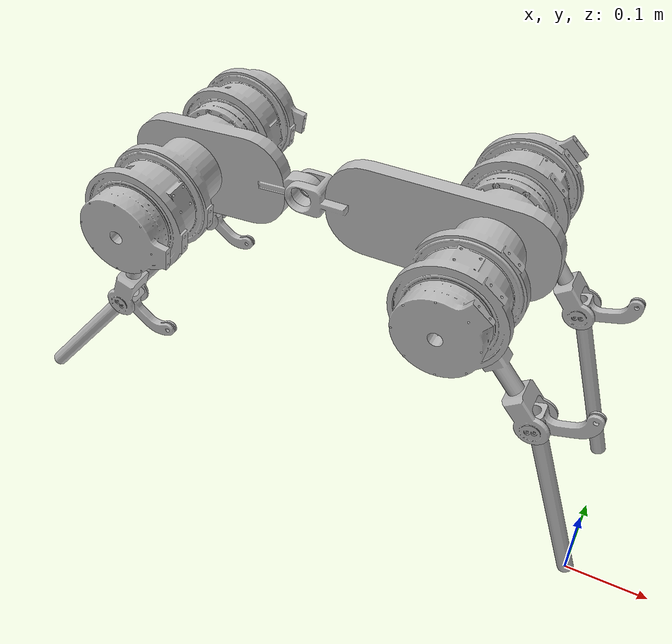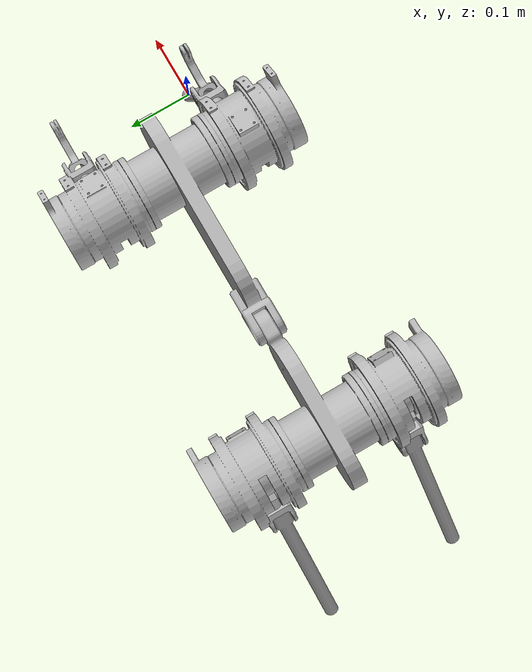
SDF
<?xml version="1.0" ?>
<sdf version='1.6'>
  <model name='FlexRobot_v1'>
    <link name='FrontBody'>
      <pose frame=''>0 0 0 0 -0 0</pose>
      <inertial>
        <pose frame=''>-0.55658 0.10246 0.35766 0 -0 0</pose>
        <mass>4.5059</mass>
        <inertia>
          <ixx>0.051537</ixx>
          <ixy>1.0077e-05</ixy>
          <ixz>0.00011737</ixz>
          <iyy>0.013909</iyy>
          <iyz>-4.4566e-05</iyz>
          <izz>0.054057</izz>
        </inertia>
      </inertial>
      <collision name='FrontBody_collision'>
        <pose frame=''>0 0 0 0 -0 0</pose>
        <geometry>
          <mesh>
            <scale>1 1 1</scale>
            <uri>model://FlexRobot_v1/meshes/FrontBody.STL</uri>
          </mesh>
        </geometry>
      </collision>
      <visual name='FrontBody_visual'>
        <pose frame=''>0 0 0 0 -0 0</pose>
        <geometry>
          <mesh>
            <scale>1 1 1</scale>
            <uri>model://FlexRobot_v1/meshes/FrontBody.STL</uri>
          </mesh>
        </geometry>
      </visual>
    </link>
    <link name='BackBody'>
      <pose frame=''>-0.40775 0.083439 0.36531 0 0 0</pose>
      <inertial>
        <pose frame=''>0.215 0.019021 0.0008 0 -0 0</pose>
        <mass>4.8301</mass>
        <inertia>
          <ixx>0.052001</ixx>
          <ixy>4.9713e-05</ixy>
          <ixz>0.00011769</ixz>
          <iyy>0.021949</iyy>
          <iyz>-1.9983e-05</iyz>
          <izz>0.061678</izz>
        </inertia>
      </inertial>
      <collision name='BackBody_collision'>
        <pose frame=''>0 0 0 0 -0 0</pose>
        <geometry>
          <mesh>
            <scale>1 1 1</scale>
            <uri>model://FlexRobot_v1/meshes/BackBody.STL</uri>
          </mesh>
        </geometry>
      </collision>
      <visual name='BackBody_visual'>
        <pose frame=''>0 0 0 0 -0 0</pose>
        <geometry>
          <mesh>
            <scale>1 1 1</scale>
            <uri>model://FlexRobot_v1/meshes/BackBody.STL</uri>
          </mesh>
        </geometry>
      </visual>
    </link>
    <joint name='BodyJoint' type='revolute'>
      <child>BackBody</child>
      <parent>FrontBody</parent>
      <axis>
        <xyz>0 -1 -0</xyz>
        <limit>
          <lower>-1e+16</lower>
          <upper>1e+16</upper>
        </limit>
        <dynamics>
          <spring_reference>0</spring_reference>
          <spring_stiffness>0</spring_stiffness>
        </dynamics>
        <use_parent_model_frame>1</use_parent_model_frame>
      </axis>
    </joint>
    <link name='RearBodyLeftLeg_Hip'>
      <pose frame=''>-0.17775 0.07246 0.36531 0 0 0</pose>
      <inertial>
        <pose frame=''>0.04503 -0.071534 -0.058122 0 -0 0</pose>
        <mass>0.23878</mass>
        <inertia>
          <ixx>0.00071753</ixx>
          <ixy>-9.7867e-06</ixy>
          <ixz>-0.00048927</ixz>
          <iyy>0.0011216</iyy>
          <iyz>1.2632e-05</iyz>
          <izz>0.00046505</izz>
        </inertia>
      </inertial>
      <collision name='RearBodyLeftLeg_Hip_collision'>
        <pose frame=''>0 0 0 0 -0 0</pose>
        <geometry>
          <mesh>
            <scale>1 1 1</scale>
            <uri>model://FlexRobot_v1/meshes/RearBodyLeftLeg_Hip.STL</uri>
          </mesh>
        </geometry>
      </collision>
      <visual name='RearBodyLeftLeg_Hip_visual'>
        <pose frame=''>0 0 0 0 -0 0</pose>
        <geometry>
          <mesh>
            <scale>1 1 1</scale>
            <uri>model://FlexRobot_v1/meshes/RearBodyLeftLeg_Hip.STL</uri>
          </mesh>
        </geometry>
      </visual>
    </link>
    <joint name='RearBodyLeftLeg_Hip_Joint' type='revolute'>
      <child>RearBodyLeftLeg_Hip</child>
      <parent>BackBody</parent>
      <axis>
        <xyz>0 -1 -0</xyz>
        <limit>
          <lower>-1e+16</lower>
          <upper>1e+16</upper>
        </limit>
        <dynamics>
          <spring_reference>0</spring_reference>
          <spring_stiffness>0</spring_stiffness>
        </dynamics>
        <use_parent_model_frame>1</use_parent_model_frame>
      </axis>
    </joint>
    <link name='RearBodyLeftLeg_Knee'>
      <pose frame=''>-0.07425 -0.0195 0.23171 0 0 0</pose>
      <inertial>
        <pose frame=''>0.025803 0.0195 -0.032369 0 -0 0</pose>
        <mass>0.092493</mass>
        <inertia>
          <ixx>0.00043795</ixx>
          <ixy>1.0876e-12</ixy>
          <ixz>-6.9646e-05</ixz>
          <iyy>0.00049392</iyy>
          <iyz>-1.9594e-12</iyz>
          <izz>6.4686e-05</izz>
        </inertia>
      </inertial>
      <collision name='RearBodyLeftLeg_Knee_collision'>
        <pose frame=''>0 0 0 0 -0 0</pose>
        <geometry>
          <mesh>
            <scale>1 1 1</scale>
            <uri>model://FlexRobot_v1/meshes/RearBodyLeftLeg_Knee.STL</uri>
          </mesh>
        </geometry>
      </collision>
      <visual name='RearBodyLeftLeg_Knee_visual'>
        <pose frame=''>0 0 0 0 -0 0</pose>
        <geometry>
          <mesh>
            <scale>1 1 1</scale>
            <uri>model://FlexRobot_v1/meshes/RearBodyLeftLeg_Knee.STL</uri>
          </mesh>
        </geometry>
      </visual>
    </link>
    <joint name='RearBodyLeftLeg_Knee' type='revolute'>
      <child>RearBodyLeftLeg_Knee</child>
      <parent>RearBodyLeftLeg_Hip</parent>
      <axis>
        <xyz>0 -1 -0</xyz>
        <limit>
          <lower>-1e+16</lower>
          <upper>1e+16</upper>
        </limit>
        <dynamics>
          <spring_reference>0</spring_reference>
          <spring_stiffness>0</spring_stiffness>
        </dynamics>
        <use_parent_model_frame>1</use_parent_model_frame>
      </axis>
    </joint>
    <link name='RearBodyRightLeg_Hip'>
      <pose frame=''>-0.17775 0.07246 0.36531 0 0 0</pose>
      <inertial>
        <pose frame=''>0.043413 0.13153 -0.059402 0 -0 0</pose>
        <mass>0.23878</mass>
        <inertia>
          <ixx>0.00074488</ixx>
          <ixy>9.558e-06</ixy>
          <ixz>-0.00048056</ixz>
          <iyy>0.0011198</iyy>
          <iyz>-1.2953e-05</iyz>
          <izz>0.00043593</izz>
        </inertia>
      </inertial>
      <collision name='RearBodyRightLeg_Hip_collision'>
        <pose frame=''>0 0 0 0 -0 0</pose>
        <geometry>
          <mesh>
            <scale>1 1 1</scale>
            <uri>model://FlexRobot_v1/meshes/RearBodyRightLeg_Hip.STL</uri>
          </mesh>
        </geometry>
      </collision>
      <visual name='RearBodyRightLeg_Hip_visual'>
        <pose frame=''>0 0 0 0 -0 0</pose>
        <geometry>
          <mesh>
            <scale>1 1 1</scale>
            <uri>model://FlexRobot_v1/meshes/RearBodyRightLeg_Hip.STL</uri>
          </mesh>
        </geometry>
      </visual>
    </link>
    <joint name='RearBodyRightLeg_Hip' type='revolute'>
      <child>RearBodyRightLeg_Hip</child>
      <parent>BackBody</parent>
      <axis>
        <xyz>0 -1 -0</xyz>
        <limit>
          <lower>-1e+16</lower>
          <upper>1e+16</upper>
        </limit>
        <dynamics>
          <spring_reference>0</spring_reference>
          <spring_stiffness>0</spring_stiffness>
        </dynamics>
        <use_parent_model_frame>1</use_parent_model_frame>
      </axis>
    </joint>
    <link name='RearBodyRightLeg_Knee'>
      <pose frame=''>-0.078096 0.18542 0.22882 0 0 0</pose>
      <inertial>
        <pose frame=''>0.02487 0.0195 -0.033091 0 -0 0</pose>
        <mass>0.092493</mass>
        <inertia>
          <ixx>0.00044162</ixx>
          <ixy>1.0346e-12</ixy>
          <ixz>-5.8899e-05</ixz>
          <iyy>0.00049392</iyy>
          <iyz>-2.005e-12</iyz>
          <izz>6.1022e-05</izz>
        </inertia>
      </inertial>
      <collision name='RearBodyRightLeg_Knee_collision'>
        <pose frame=''>0 0 0 0 -0 0</pose>
        <geometry>
          <mesh>
            <scale>1 1 1</scale>
            <uri>model://FlexRobot_v1/meshes/RearBodyRightLeg_Knee.STL</uri>
          </mesh>
        </geometry>
      </collision>
      <visual name='RearBodyRightLeg_Knee_visual'>
        <pose frame=''>0 0 0 0 -0 0</pose>
        <geometry>
          <mesh>
            <scale>1 1 1</scale>
            <uri>model://FlexRobot_v1/meshes/RearBodyRightLeg_Knee.STL</uri>
          </mesh>
        </geometry>
      </visual>
    </link>
    <joint name='RearBodyRightLeg_Knee' type='revolute'>
      <child>RearBodyRightLeg_Knee</child>
      <parent>RearBodyRightLeg_Hip</parent>
      <axis>
        <xyz>0 -1 -0</xyz>
        <limit>
          <lower>-1e+16</lower>
          <upper>1e+16</upper>
        </limit>
        <dynamics>
          <spring_reference>0</spring_reference>
          <spring_stiffness>0</spring_stiffness>
        </dynamics>
        <use_parent_model_frame>1</use_parent_model_frame>
      </axis>
    </joint>
    <link name='FrontLeftLeg_Hip'>
      <pose frame=''>-0.56254 0.07246 0.35731 0 0 0</pose>
      <inertial>
        <pose frame=''>-0.024699 -0.071534 -0.069252 0 -0 0</pose>
        <mass>0.23878</mass>
        <inertia>
          <ixx>0.00098254</ixx>
          <ixy>5.3675e-06</ixy>
          <ixz>0.00031976</ixz>
          <iyy>0.0011216</iyy>
          <iyz>1.5051e-05</iyz>
          <izz>0.00020005</izz>
        </inertia>
      </inertial>
      <collision name='FrontLeftLeg_Hip_collision'>
        <pose frame=''>0 0 0 0 -0 0</pose>
        <geometry>
          <mesh>
            <scale>1 1 1</scale>
            <uri>model://FlexRobot_v1/meshes/FrontLeftLeg_Hip.STL</uri>
          </mesh>
        </geometry>
      </collision>
      <visual name='FrontLeftLeg_Hip_visual'>
        <pose frame=''>0 0 0 0 -0 0</pose>
        <geometry>
          <mesh>
            <scale>1 1 1</scale>
            <uri>model://FlexRobot_v1/meshes/FrontLeftLeg_Hip.STL</uri>
          </mesh>
        </geometry>
      </visual>
    </link>
    <joint name='FrontLeftLeg_Hip_Joint' type='revolute'>
      <child>FrontLeftLeg_Hip</child>
      <parent>FrontBody</parent>
      <axis>
        <xyz>0 -1 -0</xyz>
        <limit>
          <lower>-1e+16</lower>
          <upper>1e+16</upper>
        </limit>
        <dynamics>
          <spring_reference>0</spring_reference>
          <spring_stiffness>0</spring_stiffness>
        </dynamics>
        <use_parent_model_frame>1</use_parent_model_frame>
      </axis>
    </joint>
    <link name='FrontLeftLeg_Knee'>
      <pose frame=''>-0.619311 -0.0195 0.19813 0 0 0</pose>
      <inertial>
        <pose frame=''>-0.013364 0.0195 -0.039178 0 -0 0</pose>
        <mass>0.092493</mass>
        <inertia>
          <ixx>0.00023629</ixx>
          <ixy>-9.7923e-13</ixy>
          <ixz>0.00019864</ixz>
          <iyy>0.00049392</iyy>
          <iyz>-1.7031e-12</iyz>
          <izz>0.00026635</izz>
        </inertia>
      </inertial>
      <collision name='FrontLeftLeg_Knee_collision'>
        <pose frame=''>0 0 0 0 -0 0</pose>
        <geometry>
          <mesh>
            <scale>1 1 1</scale>
            <uri>model://FlexRobot_v1/meshes/FrontLeftLeg_Knee.STL</uri>
          </mesh>
        </geometry>
      </collision>
      <visual name='FrontLeftLeg_Knee_visual'>
        <pose frame=''>0 0 0 0 -0 0</pose>
        <geometry>
          <mesh>
            <scale>1 1 1</scale>
            <uri>model://FlexRobot_v1/meshes/FrontLeftLeg_Knee.STL</uri>
          </mesh>
        </geometry>
      </visual>
    </link>
    <joint name='FrontLeftLeg_Knee_joint' type='revolute'>
      <child>FrontLeftLeg_Knee</child>
      <parent>FrontLeftLeg_Hip</parent>
      <axis>
        <xyz>0 -1 -0</xyz>
        <limit>
          <lower>-1e+16</lower>
          <upper>1e+16</upper>
        </limit>
        <dynamics>
          <spring_reference>0</spring_reference>
          <spring_stiffness>0</spring_stiffness>
        </dynamics>
        <use_parent_model_frame>1</use_parent_model_frame>
      </axis>
    </joint>
    <link name='FrontRightLeg_Hip'>
      <pose frame=''>-0.56254 0.07246 0.35731 0 0 0</pose>
      <inertial>
        <pose frame=''>-0.024603 0.13153 -0.06934 0 -0 0</pose>
        <mass>0.23878</mass>
        <inertia>
          <ixx>0.00098151</ixx>
          <ixy>-5.3134e-06</ixy>
          <ixz>0.00031913</ixz>
          <iyy>0.0011198</iyy>
          <iyz>-1.5195e-05</iyz>
          <izz>0.0001993</izz>
        </inertia>
      </inertial>
      <collision name='FrontRightLeg_Hip_collision'>
        <pose frame=''>0 0 0 0 -0 0</pose>
        <geometry>
          <mesh>
            <scale>1 1 1</scale>
            <uri>model://FlexRobot_v1/meshes/FrontRightLeg_Hip.STL</uri>
          </mesh>
        </geometry>
      </collision>
      <visual name='FrontRightLeg_Hip_visual'>
        <pose frame=''>0 0 0 0 -0 0</pose>
        <geometry>
          <mesh>
            <scale>1 1 1</scale>
            <uri>model://FlexRobot_v1/meshes/FrontRightLeg_Hip.STL</uri>
          </mesh>
        </geometry>
      </visual>
    </link>
    <joint name='FrontRightLeg_Hip_Joint' type='revolute'>
      <child>FrontRightLeg_Hip</child>
      <parent>FrontBody</parent>
      <axis>
        <xyz>0 -1 -0</xyz>
        <limit>
          <lower>-1e+16</lower>
          <upper>1e+16</upper>
        </limit>
        <dynamics>
          <spring_reference>0</spring_reference>
          <spring_stiffness>0</spring_stiffness>
        </dynamics>
        <use_parent_model_frame>1</use_parent_model_frame>
      </axis>
    </joint>
    <link name='FrontRightLeg_Knee'>
      <pose frame=''>-0.619129 0.18492 0.19807 0 0 0</pose>
      <inertial>
        <pose frame=''>-0.01332 0.02 -0.039193 0 -0 0</pose>
        <mass>0.092493</mass>
        <inertia>
          <ixx>0.00023674</ixx>
          <ixy>-9.7744e-13</ixy>
          <ixz>0.00019867</ixz>
          <iyy>0.00049392</iyy>
          <iyz>-1.7044e-12</iyz>
          <izz>0.00026589</izz>
        </inertia>
      </inertial>
      <collision name='FrontRightLeg_Knee_collision'>
        <pose frame=''>0 0 0 0 -0 0</pose>
        <geometry>
          <mesh>
            <scale>1 1 1</scale>
            <uri>model://FlexRobot_v1/meshes/FrontRightLeg_Knee.STL</uri>
          </mesh>
        </geometry>
      </collision>
      <visual name='FrontRightLeg_Knee_visual'>
        <pose frame=''>0 0 0 0 -0 0</pose>
        <geometry>
          <mesh>
            <scale>1 1 1</scale>
            <uri>model://FlexRobot_v1/meshes/FrontRightLeg_Knee.STL</uri>
          </mesh>
        </geometry>
      </visual>
    </link>
    <joint name='FrontRightLeg_Knee_Joint' type='revolute'>
      <child>FrontRightLeg_Knee</child>
      <parent>FrontRightLeg_Hip</parent>
      <axis>
        <xyz>0 -1 -0</xyz>
        <limit>
          <lower>-1e+16</lower>
          <upper>1e+16</upper>
        </limit>
        <dynamics>
          <spring_reference>0</spring_reference>
          <spring_stiffness>0</spring_stiffness>
        </dynamics>
        <use_parent_model_frame>1</use_parent_model_frame>
      </axis>
    </joint>
  </model>
</sdf>
